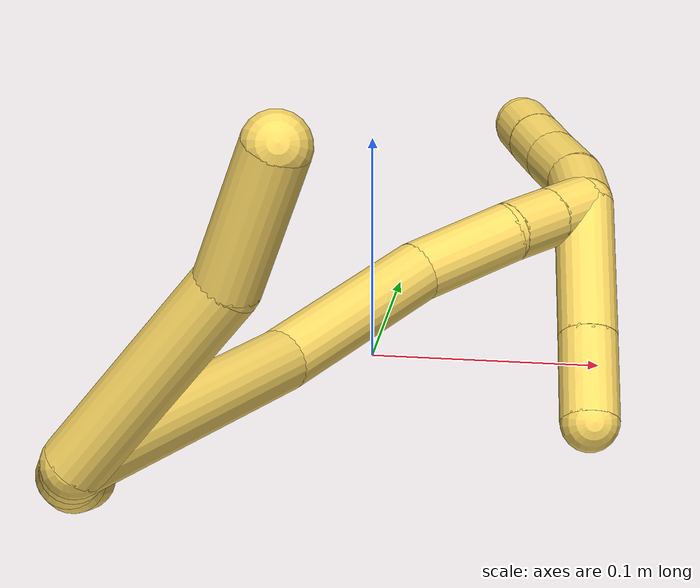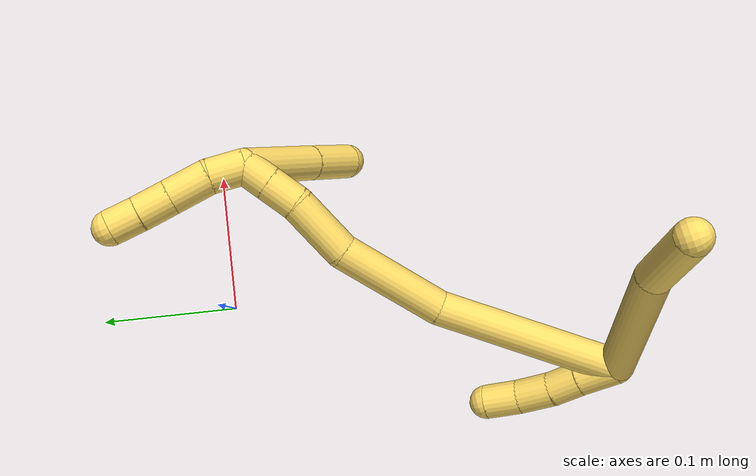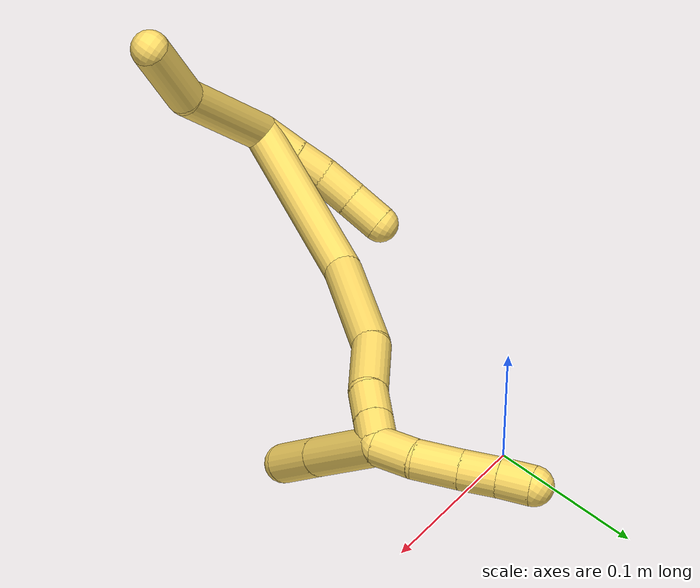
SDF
<sdf version="1.7">
 <world name="default">
  <model name="5">
   <static>0</static>
   <link name="5">
    <collision name="collision-cylinder-e_1_2_8">
     <pose>0.009384 0.038851 0.024329 -1.01132 0.201926 -0.112066</pose>
     <geometry><cylinder><radius>0.0125</radius><length>0.093582</length></cylinder></geometry>
     <surface>
      <friction><ode><mu>1.16</mu><mu2>1.16</mu2><slip1>0</slip1><slip2>0</slip2></ode></friction>
      <contact><ode><kp>1e+06</kp><kd>1</kd><max_vel>0</max_vel><min_depth>0.001</min_depth></ode></contact>
     </surface>
    </collision>
    <visual name="visual-cylinder-e_1_2_8">
     <pose>0.009384 0.038851 0.024329 -1.01132 0.201926 -0.112066</pose>
     <geometry><cylinder><radius>0.0125</radius><length>0.093582</length></cylinder></geometry>
     <material><ambient>1 0.858824 0.4 1</ambient></material>
    </visual>
    <collision name="collision-cylinder-e_2_8_6">
     <pose>0.015561 0.100847 0.064464 -0.971616 -0.113941 0.06021</pose>
     <geometry><cylinder><radius>0.0125</radius><length>0.056418</length></cylinder></geometry>
     <surface>
      <friction><ode><mu>1.16</mu><mu2>1.16</mu2><slip1>0</slip1><slip2>0</slip2></ode></friction>
      <contact><ode><kp>1e+06</kp><kd>1</kd><max_vel>0</max_vel><min_depth>0.001</min_depth></ode></contact>
     </surface>
    </collision>
    <visual name="visual-cylinder-e_2_8_6">
     <pose>0.015561 0.100847 0.064464 -0.971616 -0.113941 0.06021</pose>
     <geometry><cylinder><radius>0.0125</radius><length>0.056418</length></cylinder></geometry>
     <material><ambient>1 0.858824 0.4 1</ambient></material>
    </visual>
    <collision name="collision-cylinder-e_1_2_9">
     <pose>0.000161 -0.001399 -0.013675 3.03967 0.011715 0.228692</pose>
     <geometry><cylinder><radius>0.0125</radius><length>0.027494</length></cylinder></geometry>
     <surface>
      <friction><ode><mu>1.16</mu><mu2>1.16</mu2><slip1>0</slip1><slip2>0</slip2></ode></friction>
      <contact><ode><kp>1e+06</kp><kd>1</kd><max_vel>0</max_vel><min_depth>0.001</min_depth></ode></contact>
     </surface>
    </collision>
    <visual name="visual-cylinder-e_1_2_9">
     <pose>0.000161 -0.001399 -0.013675 3.03967 0.011715 0.228692</pose>
     <geometry><cylinder><radius>0.0125</radius><length>0.027494</length></cylinder></geometry>
     <material><ambient>1 0.858824 0.4 1</ambient></material>
    </visual>
    <collision name="collision-cylinder-e_2_9_10">
     <pose>0.000118 -0.004403 -0.038105 2.99338 -0.018728 -0.250935</pose>
     <geometry><cylinder><radius>0.0125</radius><length>0.021753</length></cylinder></geometry>
     <surface>
      <friction><ode><mu>1.16</mu><mu2>1.16</mu2><slip1>0</slip1><slip2>0</slip2></ode></friction>
      <contact><ode><kp>1e+06</kp><kd>1</kd><max_vel>0</max_vel><min_depth>0.001</min_depth></ode></contact>
     </surface>
    </collision>
    <visual name="visual-cylinder-e_2_9_10">
     <pose>0.000118 -0.004403 -0.038105 2.99338 -0.018728 -0.250935</pose>
     <geometry><cylinder><radius>0.0125</radius><length>0.021753</length></cylinder></geometry>
     <material><ambient>1 0.858824 0.4 1</ambient></material>
    </visual>
    <collision name="collision-cylinder-e_3_10_11">
     <pose>0.001074 -0.006946 -0.06142 3.06711 0.091752 1.77812</pose>
     <geometry><cylinder><radius>0.0125</radius><length>0.025296</length></cylinder></geometry>
     <surface>
      <friction><ode><mu>1.16</mu><mu2>1.16</mu2><slip1>0</slip1><slip2>0</slip2></ode></friction>
      <contact><ode><kp>1e+06</kp><kd>1</kd><max_vel>0</max_vel><min_depth>0.001</min_depth></ode></contact>
     </surface>
    </collision>
    <visual name="visual-cylinder-e_3_10_11">
     <pose>0.001074 -0.006946 -0.06142 3.06711 0.091752 1.77812</pose>
     <geometry><cylinder><radius>0.0125</radius><length>0.025296</length></cylinder></geometry>
     <material><ambient>1 0.858824 0.4 1</ambient></material>
    </visual>
    <collision name="collision-cylinder-e_4_11_5">
     <pose>0.003742 -0.00701 -0.086588 -3.07243 0.118885 -2.08849</pose>
     <geometry><cylinder><radius>0.0125</radius><length>0.025457</length></cylinder></geometry>
     <surface>
      <friction><ode><mu>1.16</mu><mu2>1.16</mu2><slip1>0</slip1><slip2>0</slip2></ode></friction>
      <contact><ode><kp>1e+06</kp><kd>1</kd><max_vel>0</max_vel><min_depth>0.001</min_depth></ode></contact>
     </surface>
    </collision>
    <visual name="visual-cylinder-e_4_11_5">
     <pose>0.003742 -0.00701 -0.086588 -3.07243 0.118885 -2.08849</pose>
     <geometry><cylinder><radius>0.0125</radius><length>0.025457</length></cylinder></geometry>
     <material><ambient>1 0.858824 0.4 1</ambient></material>
    </visual>
    <collision name="collision-cylinder-e_1_2_12">
     <pose>0.026683 0.034282 -0.048808 -2.52927 0.420664 -1.18802</pose>
     <geometry><cylinder><radius>0.0125</radius><length>0.130683</length></cylinder></geometry>
     <surface>
      <friction><ode><mu>1.16</mu><mu2>1.16</mu2><slip1>0</slip1><slip2>0</slip2></ode></friction>
      <contact><ode><kp>1e+06</kp><kd>1</kd><max_vel>0</max_vel><min_depth>0.001</min_depth></ode></contact>
     </surface>
    </collision>
    <visual name="visual-cylinder-e_1_2_12">
     <pose>0.026683 0.034282 -0.048808 -2.52927 0.420664 -1.18802</pose>
     <geometry><cylinder><radius>0.0125</radius><length>0.130683</length></cylinder></geometry>
     <material><ambient>1 0.858824 0.4 1</ambient></material>
    </visual>
    <collision name="collision-cylinder-e_2_12_13">
     <pose>0.071025 0.097704 -0.118635 -2.19568 0.456813 -0.852849</pose>
     <geometry><cylinder><radius>0.0125</radius><length>0.080066</length></cylinder></geometry>
     <surface>
      <friction><ode><mu>1.16</mu><mu2>1.16</mu2><slip1>0</slip1><slip2>0</slip2></ode></friction>
      <contact><ode><kp>1e+06</kp><kd>1</kd><max_vel>0</max_vel><min_depth>0.001</min_depth></ode></contact>
     </surface>
    </collision>
    <visual name="visual-cylinder-e_2_12_13">
     <pose>0.071025 0.097704 -0.118635 -2.19568 0.456813 -0.852849</pose>
     <geometry><cylinder><radius>0.0125</radius><length>0.080066</length></cylinder></geometry>
     <material><ambient>1 0.858824 0.4 1</ambient></material>
    </visual>
    <collision name="collision-cylinder-e_3_13_14">
     <pose>0.102609 0.143338 -0.14667 -1.97304 0.660472 -0.95645</pose>
     <geometry><cylinder><radius>0.0125</radius><length>0.045399</length></cylinder></geometry>
     <surface>
      <friction><ode><mu>1.16</mu><mu2>1.16</mu2><slip1>0</slip1><slip2>0</slip2></ode></friction>
      <contact><ode><kp>1e+06</kp><kd>1</kd><max_vel>0</max_vel><min_depth>0.001</min_depth></ode></contact>
     </surface>
    </collision>
    <visual name="visual-cylinder-e_3_13_14">
     <pose>0.102609 0.143338 -0.14667 -1.97304 0.660472 -0.95645</pose>
     <geometry><cylinder><radius>0.0125</radius><length>0.045399</length></cylinder></geometry>
     <material><ambient>1 0.858824 0.4 1</ambient></material>
    </visual>
    <collision name="collision-cylinder-e_4_14_15">
     <pose>0.123457 0.167232 -0.159808 -2.26185 0.624585 -1.20256</pose>
     <geometry><cylinder><radius>0.0125</radius><length>0.023672</length></cylinder></geometry>
     <surface>
      <friction><ode><mu>1.16</mu><mu2>1.16</mu2><slip1>0</slip1><slip2>0</slip2></ode></friction>
      <contact><ode><kp>1e+06</kp><kd>1</kd><max_vel>0</max_vel><min_depth>0.001</min_depth></ode></contact>
     </surface>
    </collision>
    <visual name="visual-cylinder-e_4_14_15">
     <pose>0.123457 0.167232 -0.159808 -2.26185 0.624585 -1.20256</pose>
     <geometry><cylinder><radius>0.0125</radius><length>0.023672</length></cylinder></geometry>
     <material><ambient>1 0.858824 0.4 1</ambient></material>
    </visual>
    <collision name="collision-cylinder-e_5_15_1">
     <pose>0.136278 0.180937 -0.171144 -2.26188 0.624628 -1.20267</pose>
     <geometry><cylinder><radius>0.0125</radius><length>0.020179</length></cylinder></geometry>
     <surface>
      <friction><ode><mu>1.16</mu><mu2>1.16</mu2><slip1>0</slip1><slip2>0</slip2></ode></friction>
      <contact><ode><kp>1e+06</kp><kd>1</kd><max_vel>0</max_vel><min_depth>0.001</min_depth></ode></contact>
     </surface>
    </collision>
    <visual name="visual-cylinder-e_5_15_1">
     <pose>0.136278 0.180937 -0.171144 -2.26188 0.624628 -1.20267</pose>
     <geometry><cylinder><radius>0.0125</radius><length>0.020179</length></cylinder></geometry>
     <material><ambient>1 0.858824 0.4 1</ambient></material>
    </visual>
    <collision name="collision-cylinder-e_1_1_16">
     <pose>0.153462 0.161467 -0.163692 1.114 0.374337 0.234807</pose>
     <geometry><cylinder><radius>0.0125</radius><length>0.061716</length></cylinder></geometry>
     <surface>
      <friction><ode><mu>1.16</mu><mu2>1.16</mu2><slip1>0</slip1><slip2>0</slip2></ode></friction>
      <contact><ode><kp>1e+06</kp><kd>1</kd><max_vel>0</max_vel><min_depth>0.001</min_depth></ode></contact>
     </surface>
    </collision>
    <visual name="visual-cylinder-e_1_1_16">
     <pose>0.153462 0.161467 -0.163692 1.114 0.374337 0.234807</pose>
     <geometry><cylinder><radius>0.0125</radius><length>0.061716</length></cylinder></geometry>
     <material><ambient>1 0.858824 0.4 1</ambient></material>
    </visual>
    <collision name="collision-cylinder-e_2_16_4">
     <pose>0.171722 0.119594 -0.143368 1.12683 0.37306 0.237321</pose>
     <geometry><cylinder><radius>0.0125</radius><length>0.038284</length></cylinder></geometry>
     <surface>
      <friction><ode><mu>1.16</mu><mu2>1.16</mu2><slip1>0</slip1><slip2>0</slip2></ode></friction>
      <contact><ode><kp>1e+06</kp><kd>1</kd><max_vel>0</max_vel><min_depth>0.001</min_depth></ode></contact>
     </surface>
    </collision>
    <visual name="visual-cylinder-e_2_16_4">
     <pose>0.171722 0.119594 -0.143368 1.12683 0.37306 0.237321</pose>
     <geometry><cylinder><radius>0.0125</radius><length>0.038284</length></cylinder></geometry>
     <material><ambient>1 0.858824 0.4 1</ambient></material>
    </visual>
    <collision name="collision-cylinder-e_1_1_17">
     <pose>0.139622 0.192687 -0.187571 -2.68955 -0.20228 0.831261</pose>
     <geometry><cylinder><radius>0.0125</radius><length>0.025443</length></cylinder></geometry>
     <surface>
      <friction><ode><mu>1.16</mu><mu2>1.16</mu2><slip1>0</slip1><slip2>0</slip2></ode></friction>
      <contact><ode><kp>1e+06</kp><kd>1</kd><max_vel>0</max_vel><min_depth>0.001</min_depth></ode></contact>
     </surface>
    </collision>
    <visual name="visual-cylinder-e_1_1_17">
     <pose>0.139622 0.192687 -0.187571 -2.68955 -0.20228 0.831261</pose>
     <geometry><cylinder><radius>0.0125</radius><length>0.025443</length></cylinder></geometry>
     <material><ambient>1 0.858824 0.4 1</ambient></material>
    </visual>
    <collision name="collision-cylinder-e_2_17_18">
     <pose>0.132084 0.202028 -0.212104 -2.85701 -0.344626 1.76419</pose>
     <geometry><cylinder><radius>0.0125</radius><length>0.029496</length></cylinder></geometry>
     <surface>
      <friction><ode><mu>1.16</mu><mu2>1.16</mu2><slip1>0</slip1><slip2>0</slip2></ode></friction>
      <contact><ode><kp>1e+06</kp><kd>1</kd><max_vel>0</max_vel><min_depth>0.001</min_depth></ode></contact>
     </surface>
    </collision>
    <visual name="visual-cylinder-e_2_17_18">
     <pose>0.132084 0.202028 -0.212104 -2.85701 -0.344626 1.76419</pose>
     <geometry><cylinder><radius>0.0125</radius><length>0.029496</length></cylinder></geometry>
     <material><ambient>1 0.858824 0.4 1</ambient></material>
    </visual>
    <collision name="collision-cylinder-e_3_18_19">
     <pose>0.122846 0.209386 -0.236012 -2.82557 -0.36495 1.71702</pose>
     <geometry><cylinder><radius>0.0125</radius><length>0.023846</length></cylinder></geometry>
     <surface>
      <friction><ode><mu>1.16</mu><mu2>1.16</mu2><slip1>0</slip1><slip2>0</slip2></ode></friction>
      <contact><ode><kp>1e+06</kp><kd>1</kd><max_vel>0</max_vel><min_depth>0.001</min_depth></ode></contact>
     </surface>
    </collision>
    <visual name="visual-cylinder-e_3_18_19">
     <pose>0.122846 0.209386 -0.236012 -2.82557 -0.36495 1.71702</pose>
     <geometry><cylinder><radius>0.0125</radius><length>0.023846</length></cylinder></geometry>
     <material><ambient>1 0.858824 0.4 1</ambient></material>
    </visual>
    <collision name="collision-cylinder-e_4_19_3">
     <pose>0.115246 0.216017 -0.256153 -2.82138 -0.320766 1.57255</pose>
     <geometry><cylinder><radius>0.0125</radius><length>0.021215</length></cylinder></geometry>
     <surface>
      <friction><ode><mu>1.16</mu><mu2>1.16</mu2><slip1>0</slip1><slip2>0</slip2></ode></friction>
      <contact><ode><kp>1e+06</kp><kd>1</kd><max_vel>0</max_vel><min_depth>0.001</min_depth></ode></contact>
     </surface>
    </collision>
    <visual name="visual-cylinder-e_4_19_3">
     <pose>0.115246 0.216017 -0.256153 -2.82138 -0.320766 1.57255</pose>
     <geometry><cylinder><radius>0.0125</radius><length>0.021215</length></cylinder></geometry>
     <material><ambient>1 0.858824 0.4 1</ambient></material>
    </visual>
    <collision name="collision-sphere-3">
     <pose>0.111902 0.219185 -0.265708 0 -0 0</pose>
     <geometry><sphere><radius>0.0125</radius></sphere></geometry>
     <surface>
      <friction><ode><mu>1.16</mu><mu2>1.16</mu2><slip1>0</slip1><slip2>0</slip2></ode></friction>
      <contact><ode><kp>1e+06</kp><kd>1</kd><max_vel>0</max_vel><min_depth>0.001</min_depth></ode></contact>
     </surface>
    </collision>
    <visual name="visual-sphere-3">
     <pose>0.111902 0.219185 -0.265708 0 -0 0</pose>
     <geometry><sphere><radius>0.0125</radius></sphere></geometry>
     <material><ambient>1 0.858824 0.4 1</ambient></material>
    </visual>
    <collision name="collision-sphere-19">
     <pose>0.118591 0.212848 -0.246598 0 -0 0</pose>
     <geometry><sphere><radius>0.0125</radius></sphere></geometry>
     <surface>
      <friction><ode><mu>1.16</mu><mu2>1.16</mu2><slip1>0</slip1><slip2>0</slip2></ode></friction>
      <contact><ode><kp>1e+06</kp><kd>1</kd><max_vel>0</max_vel><min_depth>0.001</min_depth></ode></contact>
     </surface>
    </collision>
    <visual name="visual-sphere-19">
     <pose>0.118591 0.212848 -0.246598 0 -0 0</pose>
     <geometry><sphere><radius>0.0125</radius></sphere></geometry>
     <material><ambient>1 0.858824 0.4 1</ambient></material>
    </visual>
    <collision name="collision-sphere-11">
     <pose>0.002232 -0.007883 -0.07398 0 -0 0</pose>
     <geometry><sphere><radius>0.0125</radius></sphere></geometry>
     <surface>
      <friction><ode><mu>1.16</mu><mu2>1.16</mu2><slip1>0</slip1><slip2>0</slip2></ode></friction>
      <contact><ode><kp>1e+06</kp><kd>1</kd><max_vel>0</max_vel><min_depth>0.001</min_depth></ode></contact>
     </surface>
    </collision>
    <visual name="visual-sphere-11">
     <pose>0.002232 -0.007883 -0.07398 0 -0 0</pose>
     <geometry><sphere><radius>0.0125</radius></sphere></geometry>
     <material><ambient>1 0.858824 0.4 1</ambient></material>
    </visual>
    <collision name="collision-sphere-10">
     <pose>-8.5e-05 -0.006009 -0.04886 0 -0 0</pose>
     <geometry><sphere><radius>0.0125</radius></sphere></geometry>
     <surface>
      <friction><ode><mu>1.16</mu><mu2>1.16</mu2><slip1>0</slip1><slip2>0</slip2></ode></friction>
      <contact><ode><kp>1e+06</kp><kd>1</kd><max_vel>0</max_vel><min_depth>0.001</min_depth></ode></contact>
     </surface>
    </collision>
    <visual name="visual-sphere-10">
     <pose>-8.5e-05 -0.006009 -0.04886 0 -0 0</pose>
     <geometry><sphere><radius>0.0125</radius></sphere></geometry>
     <material><ambient>1 0.858824 0.4 1</ambient></material>
    </visual>
    <collision name="collision-sphere-6">
     <pose>0.012354 0.12399 0.08027 0 -0 0</pose>
     <geometry><sphere><radius>0.0125</radius></sphere></geometry>
     <surface>
      <friction><ode><mu>1.16</mu><mu2>1.16</mu2><slip1>0</slip1><slip2>0</slip2></ode></friction>
      <contact><ode><kp>1e+06</kp><kd>1</kd><max_vel>0</max_vel><min_depth>0.001</min_depth></ode></contact>
     </surface>
    </collision>
    <visual name="visual-sphere-6">
     <pose>0.012354 0.12399 0.08027 0 -0 0</pose>
     <geometry><sphere><radius>0.0125</radius></sphere></geometry>
     <material><ambient>1 0.858824 0.4 1</ambient></material>
    </visual>
    <collision name="collision-sphere-9">
     <pose>0.000322 -0.002797 -0.027349 0 -0 0</pose>
     <geometry><sphere><radius>0.0125</radius></sphere></geometry>
     <surface>
      <friction><ode><mu>1.16</mu><mu2>1.16</mu2><slip1>0</slip1><slip2>0</slip2></ode></friction>
      <contact><ode><kp>1e+06</kp><kd>1</kd><max_vel>0</max_vel><min_depth>0.001</min_depth></ode></contact>
     </surface>
    </collision>
    <visual name="visual-sphere-9">
     <pose>0.000322 -0.002797 -0.027349 0 -0 0</pose>
     <geometry><sphere><radius>0.0125</radius></sphere></geometry>
     <material><ambient>1 0.858824 0.4 1</ambient></material>
    </visual>
    <collision name="collision-sphere-2">
     <geometry><sphere><radius>0.0125</radius></sphere></geometry>
     <surface>
      <friction><ode><mu>1.16</mu><mu2>1.16</mu2><slip1>0</slip1><slip2>0</slip2></ode></friction>
      <contact><ode><kp>1e+06</kp><kd>1</kd><max_vel>0</max_vel><min_depth>0.001</min_depth></ode></contact>
     </surface>
    </collision>
    <visual name="visual-sphere-2">
     <geometry><sphere><radius>0.0125</radius></sphere></geometry>
     <material><ambient>1 0.858824 0.4 1</ambient></material>
    </visual>
    <collision name="collision-sphere-8">
     <pose>0.018769 0.077703 0.048659 0 -0 0</pose>
     <geometry><sphere><radius>0.0125</radius></sphere></geometry>
     <surface>
      <friction><ode><mu>1.16</mu><mu2>1.16</mu2><slip1>0</slip1><slip2>0</slip2></ode></friction>
      <contact><ode><kp>1e+06</kp><kd>1</kd><max_vel>0</max_vel><min_depth>0.001</min_depth></ode></contact>
     </surface>
    </collision>
    <visual name="visual-sphere-8">
     <pose>0.018769 0.077703 0.048659 0 -0 0</pose>
     <geometry><sphere><radius>0.0125</radius></sphere></geometry>
     <material><ambient>1 0.858824 0.4 1</ambient></material>
    </visual>
    <collision name="collision-sphere-5">
     <pose>0.005252 -0.006136 -0.099197 0 -0 0</pose>
     <geometry><sphere><radius>0.0125</radius></sphere></geometry>
     <surface>
      <friction><ode><mu>1.16</mu><mu2>1.16</mu2><slip1>0</slip1><slip2>0</slip2></ode></friction>
      <contact><ode><kp>1e+06</kp><kd>1</kd><max_vel>0</max_vel><min_depth>0.001</min_depth></ode></contact>
     </surface>
    </collision>
    <visual name="visual-sphere-5">
     <pose>0.005252 -0.006136 -0.099197 0 -0 0</pose>
     <geometry><sphere><radius>0.0125</radius></sphere></geometry>
     <material><ambient>1 0.858824 0.4 1</ambient></material>
    </visual>
    <collision name="collision-sphere-12">
     <pose>0.053367 0.068565 -0.097617 0 -0 0</pose>
     <geometry><sphere><radius>0.0125</radius></sphere></geometry>
     <surface>
      <friction><ode><mu>1.16</mu><mu2>1.16</mu2><slip1>0</slip1><slip2>0</slip2></ode></friction>
      <contact><ode><kp>1e+06</kp><kd>1</kd><max_vel>0</max_vel><min_depth>0.001</min_depth></ode></contact>
     </surface>
    </collision>
    <visual name="visual-sphere-12">
     <pose>0.053367 0.068565 -0.097617 0 -0 0</pose>
     <geometry><sphere><radius>0.0125</radius></sphere></geometry>
     <material><ambient>1 0.858824 0.4 1</ambient></material>
    </visual>
    <collision name="collision-sphere-13">
     <pose>0.088683 0.126843 -0.139653 0 -0 0</pose>
     <geometry><sphere><radius>0.0125</radius></sphere></geometry>
     <surface>
      <friction><ode><mu>1.16</mu><mu2>1.16</mu2><slip1>0</slip1><slip2>0</slip2></ode></friction>
      <contact><ode><kp>1e+06</kp><kd>1</kd><max_vel>0</max_vel><min_depth>0.001</min_depth></ode></contact>
     </surface>
    </collision>
    <visual name="visual-sphere-13">
     <pose>0.088683 0.126843 -0.139653 0 -0 0</pose>
     <geometry><sphere><radius>0.0125</radius></sphere></geometry>
     <material><ambient>1 0.858824 0.4 1</ambient></material>
    </visual>
    <collision name="collision-sphere-14">
     <pose>0.116535 0.159833 -0.153688 0 -0 0</pose>
     <geometry><sphere><radius>0.0125</radius></sphere></geometry>
     <surface>
      <friction><ode><mu>1.16</mu><mu2>1.16</mu2><slip1>0</slip1><slip2>0</slip2></ode></friction>
      <contact><ode><kp>1e+06</kp><kd>1</kd><max_vel>0</max_vel><min_depth>0.001</min_depth></ode></contact>
     </surface>
    </collision>
    <visual name="visual-sphere-14">
     <pose>0.116535 0.159833 -0.153688 0 -0 0</pose>
     <geometry><sphere><radius>0.0125</radius></sphere></geometry>
     <material><ambient>1 0.858824 0.4 1</ambient></material>
    </visual>
    <collision name="collision-sphere-15">
     <pose>0.130378 0.174631 -0.165927 0 -0 0</pose>
     <geometry><sphere><radius>0.0125</radius></sphere></geometry>
     <surface>
      <friction><ode><mu>1.16</mu><mu2>1.16</mu2><slip1>0</slip1><slip2>0</slip2></ode></friction>
      <contact><ode><kp>1e+06</kp><kd>1</kd><max_vel>0</max_vel><min_depth>0.001</min_depth></ode></contact>
     </surface>
    </collision>
    <visual name="visual-sphere-15">
     <pose>0.130378 0.174631 -0.165927 0 -0 0</pose>
     <geometry><sphere><radius>0.0125</radius></sphere></geometry>
     <material><ambient>1 0.858824 0.4 1</ambient></material>
    </visual>
    <collision name="collision-sphere-1">
     <pose>0.142178 0.187244 -0.17636 0 -0 0</pose>
     <geometry><sphere><radius>0.0125</radius></sphere></geometry>
     <surface>
      <friction><ode><mu>1.16</mu><mu2>1.16</mu2><slip1>0</slip1><slip2>0</slip2></ode></friction>
      <contact><ode><kp>1e+06</kp><kd>1</kd><max_vel>0</max_vel><min_depth>0.001</min_depth></ode></contact>
     </surface>
    </collision>
    <visual name="visual-sphere-1">
     <pose>0.142178 0.187244 -0.17636 0 -0 0</pose>
     <geometry><sphere><radius>0.0125</radius></sphere></geometry>
     <material><ambient>1 0.858824 0.4 1</ambient></material>
    </visual>
    <collision name="collision-sphere-18">
     <pose>0.127102 0.205925 -0.225426 0 -0 0</pose>
     <geometry><sphere><radius>0.0125</radius></sphere></geometry>
     <surface>
      <friction><ode><mu>1.16</mu><mu2>1.16</mu2><slip1>0</slip1><slip2>0</slip2></ode></friction>
      <contact><ode><kp>1e+06</kp><kd>1</kd><max_vel>0</max_vel><min_depth>0.001</min_depth></ode></contact>
     </surface>
    </collision>
    <visual name="visual-sphere-18">
     <pose>0.127102 0.205925 -0.225426 0 -0 0</pose>
     <geometry><sphere><radius>0.0125</radius></sphere></geometry>
     <material><ambient>1 0.858824 0.4 1</ambient></material>
    </visual>
    <collision name="collision-sphere-16">
     <pose>0.164745 0.135691 -0.151024 0 -0 0</pose>
     <geometry><sphere><radius>0.0125</radius></sphere></geometry>
     <surface>
      <friction><ode><mu>1.16</mu><mu2>1.16</mu2><slip1>0</slip1><slip2>0</slip2></ode></friction>
      <contact><ode><kp>1e+06</kp><kd>1</kd><max_vel>0</max_vel><min_depth>0.001</min_depth></ode></contact>
     </surface>
    </collision>
    <visual name="visual-sphere-16">
     <pose>0.164745 0.135691 -0.151024 0 -0 0</pose>
     <geometry><sphere><radius>0.0125</radius></sphere></geometry>
     <material><ambient>1 0.858824 0.4 1</ambient></material>
    </visual>
    <collision name="collision-sphere-4">
     <pose>0.178698 0.103496 -0.135711 0 -0 0</pose>
     <geometry><sphere><radius>0.0125</radius></sphere></geometry>
     <surface>
      <friction><ode><mu>1.16</mu><mu2>1.16</mu2><slip1>0</slip1><slip2>0</slip2></ode></friction>
      <contact><ode><kp>1e+06</kp><kd>1</kd><max_vel>0</max_vel><min_depth>0.001</min_depth></ode></contact>
     </surface>
    </collision>
    <visual name="visual-sphere-4">
     <pose>0.178698 0.103496 -0.135711 0 -0 0</pose>
     <geometry><sphere><radius>0.0125</radius></sphere></geometry>
     <material><ambient>1 0.858824 0.4 1</ambient></material>
    </visual>
    <collision name="collision-sphere-17">
     <pose>0.137067 0.198131 -0.198781 0 -0 0</pose>
     <geometry><sphere><radius>0.0125</radius></sphere></geometry>
     <surface>
      <friction><ode><mu>1.16</mu><mu2>1.16</mu2><slip1>0</slip1><slip2>0</slip2></ode></friction>
      <contact><ode><kp>1e+06</kp><kd>1</kd><max_vel>0</max_vel><min_depth>0.001</min_depth></ode></contact>
     </surface>
    </collision>
    <visual name="visual-sphere-17">
     <pose>0.137067 0.198131 -0.198781 0 -0 0</pose>
     <geometry><sphere><radius>0.0125</radius></sphere></geometry>
     <material><ambient>1 0.858824 0.4 1</ambient></material>
    </visual>
    <inertial>
     <pose>0.067011 0.093651 -0.088671 0 -0 0</pose>
     <mass>0.75</mass>
     <inertia>
      <ixx>3.3e-05</ixx>
      <ixy>0</ixy>
      <ixz>0</ixz>
      <iyy>-0.000132</iyy>
      <iyz>0</iyz>
      <izz>-0.000341</izz>
     </inertia>
    </inertial>
   </link>
   <pose>-0.070008 -0.267722 0.054647 1.15653 0.45877 0.036444</pose>
  </model>
 </world>
</sdf>
